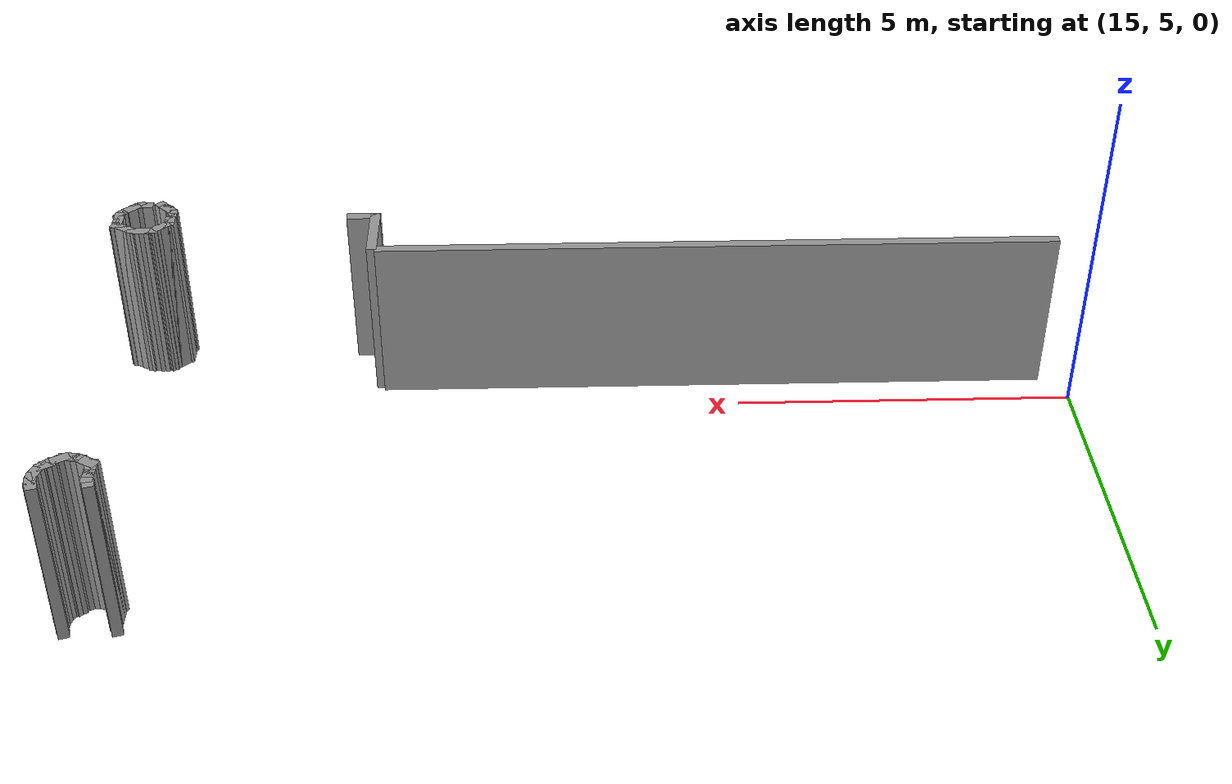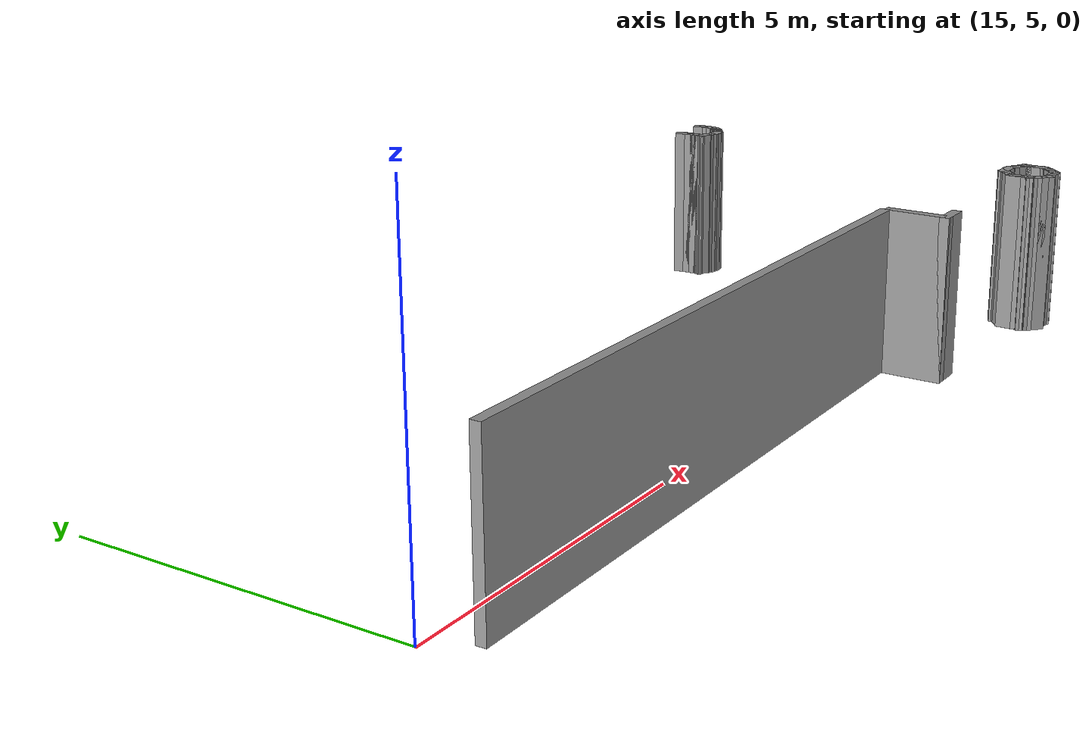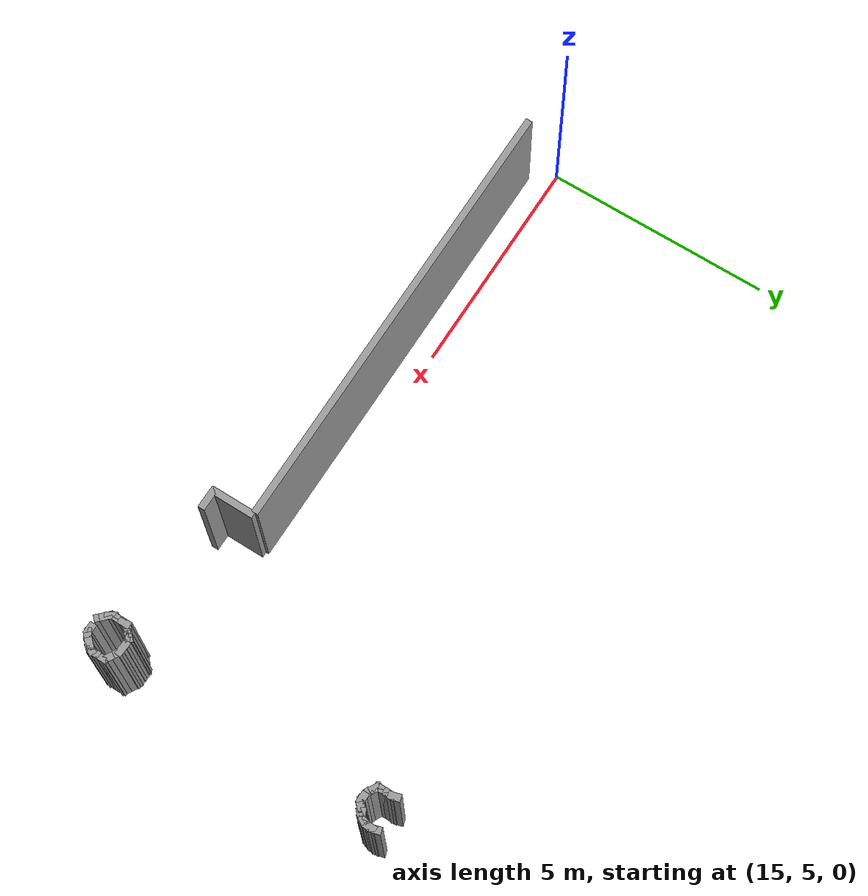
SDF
<sdf version="1.6">
 <model name="draft3">
  <pose>34.2026 -2.81154 0 0 -0 0</pose>
  <link name="Wall_310">
   <collision name="Wall_310_Collision">
    <geometry><box><size>10 0.15 2.5</size></box></geometry>
    <pose>0 0 1.25 0 -0 0</pose>
   </collision>
   <visual name="Wall_310_Visual">
    <pose>0 0 1.25 0 -0 0</pose>
    <geometry><box><size>10 0.15 2.5</size></box></geometry>
    <material>
     <script><uri>file://media/materials/scripts/gazebo.material</uri><name>Gazebo/Grey</name></script>
     <ambient>1 1 1 1</ambient>
    </material>
   </visual>
   <pose>-13.8388 7.2478 0 0 -0 0</pose>
  </link>
  <link name="Wall_391">
   <collision name="Wall_391_Collision">
    <geometry><box><size>0.25 0.15 2.5</size></box></geometry>
    <pose>0 0 1.25 0 -0 0</pose>
   </collision>
   <visual name="Wall_391_Visual">
    <pose>0 0 1.25 0 -0 0</pose>
    <geometry><box><size>0.25 0.15 2.5</size></box></geometry>
    <material>
     <script><uri>file://media/materials/scripts/gazebo.material</uri><name>Gazebo/Grey</name></script>
     <ambient>1 1 1 1</ambient>
    </material>
   </visual>
   <pose>-5.01032 12.4749 0 0 0 -1.309</pose>
  </link>
  <link name="Wall_392">
   <collision name="Wall_392_Collision">
    <geometry><box><size>0.25 0.15 2.5</size></box></geometry>
    <pose>0 0 1.25 0 -0 0</pose>
   </collision>
   <visual name="Wall_392_Visual">
    <pose>0 0 1.25 0 -0 0</pose>
    <geometry><box><size>0.25 0.15 2.5</size></box></geometry>
    <material>
     <script><uri>file://media/materials/scripts/gazebo.material</uri><name>Gazebo/Grey</name></script>
     <ambient>1 1 1 1</ambient>
    </material>
   </visual>
   <pose>-4.99737 12.3766 0 0 0 -1.5708</pose>
  </link>
  <link name="Wall_393">
   <collision name="Wall_393_Collision">
    <geometry><box><size>0.25 0.15 2.5</size></box></geometry>
    <pose>0 0 1.25 0 -0 0</pose>
   </collision>
   <visual name="Wall_393_Visual">
    <pose>0 0 1.25 0 -0 0</pose>
    <geometry><box><size>0.25 0.15 2.5</size></box></geometry>
    <material>
     <script><uri>file://media/materials/scripts/gazebo.material</uri><name>Gazebo/Grey</name></script>
     <ambient>1 1 1 1</ambient>
    </material>
   </visual>
   <pose>-5.01032 12.2783 0 0 0 -1.8326</pose>
  </link>
  <link name="Wall_394">
   <collision name="Wall_394_Collision">
    <geometry><box><size>0.25 0.15 2.5</size></box></geometry>
    <pose>0 0 1.25 0 -0 0</pose>
   </collision>
   <visual name="Wall_394_Visual">
    <pose>0 0 1.25 0 -0 0</pose>
    <geometry><box><size>0.25 0.15 2.5</size></box></geometry>
    <material>
     <script><uri>file://media/materials/scripts/gazebo.material</uri><name>Gazebo/Grey</name></script>
     <ambient>1 1 1 1</ambient>
    </material>
   </visual>
   <pose>-5.04826 12.1867 0 0 0 -2.0944</pose>
  </link>
  <link name="Wall_395">
   <collision name="Wall_395_Collision">
    <geometry><box><size>0.25 0.15 2.5</size></box></geometry>
    <pose>0 0 1.25 0 -0 0</pose>
   </collision>
   <visual name="Wall_395_Visual">
    <pose>0 0 1.25 0 -0 0</pose>
    <geometry><box><size>0.25 0.15 2.5</size></box></geometry>
    <material>
     <script><uri>file://media/materials/scripts/gazebo.material</uri><name>Gazebo/Grey</name></script>
     <ambient>1 1 1 1</ambient>
    </material>
   </visual>
   <pose>-5.10861 12.108 0 0 0 -2.35619</pose>
  </link>
  <link name="Wall_398">
   <collision name="Wall_398_Collision">
    <geometry><box><size>0.25 0.15 2.5</size></box></geometry>
    <pose>0 0 1.25 0 -0 0</pose>
   </collision>
   <visual name="Wall_398_Visual">
    <pose>0 0 1.25 0 -0 0</pose>
    <geometry><box><size>0.25 0.15 2.5</size></box></geometry>
    <material>
     <script><uri>file://media/materials/scripts/gazebo.material</uri><name>Gazebo/Grey</name></script>
     <ambient>1 1 1 1</ambient>
    </material>
   </visual>
   <pose>-5.11656 12.1184 0 0 0 -2.61799</pose>
  </link>
  <link name="Wall_399">
   <collision name="Wall_399_Collision">
    <geometry><box><size>0.25 0.15 2.5</size></box></geometry>
    <pose>0 0 1.25 0 -0 0</pose>
   </collision>
   <visual name="Wall_399_Visual">
    <pose>0 0 1.25 0 -0 0</pose>
    <geometry><box><size>0.25 0.15 2.5</size></box></geometry>
    <material>
     <script><uri>file://media/materials/scripts/gazebo.material</uri><name>Gazebo/Grey</name></script>
     <ambient>1 1 1 1</ambient>
    </material>
   </visual>
   <pose>-5.19521 12.058 0 0 0 -2.35619</pose>
  </link>
  <link name="Wall_400">
   <collision name="Wall_400_Collision">
    <geometry><box><size>0.25 0.15 2.5</size></box></geometry>
    <pose>0 0 1.25 0 -0 0</pose>
   </collision>
   <visual name="Wall_400_Visual">
    <pose>0 0 1.25 0 -0 0</pose>
    <geometry><box><size>0.25 0.15 2.5</size></box></geometry>
    <material>
     <script><uri>file://media/materials/scripts/gazebo.material</uri><name>Gazebo/Grey</name></script>
     <ambient>1 1 1 1</ambient>
    </material>
   </visual>
   <pose>-5.27387 11.9977 0 0 0 -2.61799</pose>
  </link>
  <link name="Wall_401">
   <collision name="Wall_401_Collision">
    <geometry><box><size>0.25 0.15 2.5</size></box></geometry>
    <pose>0 0 1.25 0 -0 0</pose>
   </collision>
   <visual name="Wall_401_Visual">
    <pose>0 0 1.25 0 -0 0</pose>
    <geometry><box><size>0.25 0.15 2.5</size></box></geometry>
    <material>
     <script><uri>file://media/materials/scripts/gazebo.material</uri><name>Gazebo/Grey</name></script>
     <ambient>1 1 1 1</ambient>
    </material>
   </visual>
   <pose>-5.36717 11.9727 0 0 -0 3.14159</pose>
  </link>
  <link name="Wall_402">
   <collision name="Wall_402_Collision">
    <geometry><box><size>0.25 0.15 2.5</size></box></geometry>
    <pose>0 0 1.25 0 -0 0</pose>
   </collision>
   <visual name="Wall_402_Visual">
    <pose>0 0 1.25 0 -0 0</pose>
    <geometry><box><size>0.25 0.15 2.5</size></box></geometry>
    <material>
     <script><uri>file://media/materials/scripts/gazebo.material</uri><name>Gazebo/Grey</name></script>
     <ambient>1 1 1 1</ambient>
    </material>
   </visual>
   <pose>-5.46547 11.9856 0 0 -0 2.87979</pose>
  </link>
  <link name="Wall_403">
   <collision name="Wall_403_Collision">
    <geometry><box><size>0.25 0.15 2.5</size></box></geometry>
    <pose>0 0 1.25 0 -0 0</pose>
   </collision>
   <visual name="Wall_403_Visual">
    <pose>0 0 1.25 0 -0 0</pose>
    <geometry><box><size>0.25 0.15 2.5</size></box></geometry>
    <material>
     <script><uri>file://media/materials/scripts/gazebo.material</uri><name>Gazebo/Grey</name></script>
     <ambient>1 1 1 1</ambient>
    </material>
   </visual>
   <pose>-5.55706 12.0236 0 0 -0 2.61799</pose>
  </link>
  <link name="Wall_404">
   <collision name="Wall_404_Collision">
    <geometry><box><size>0.25 0.15 2.5</size></box></geometry>
    <pose>0 0 1.25 0 -0 0</pose>
   </collision>
   <visual name="Wall_404_Visual">
    <pose>0 0 1.25 0 -0 0</pose>
    <geometry><box><size>0.25 0.15 2.5</size></box></geometry>
    <material>
     <script><uri>file://media/materials/scripts/gazebo.material</uri><name>Gazebo/Grey</name></script>
     <ambient>1 1 1 1</ambient>
    </material>
   </visual>
   <pose>-5.64367 12.0736 0 0 -0 2.61799</pose>
  </link>
  <link name="Wall_405">
   <collision name="Wall_405_Collision">
    <geometry><box><size>0.25 0.15 2.5</size></box></geometry>
    <pose>0 0 1.25 0 -0 0</pose>
   </collision>
   <visual name="Wall_405_Visual">
    <pose>0 0 1.25 0 -0 0</pose>
    <geometry><box><size>0.25 0.15 2.5</size></box></geometry>
    <material>
     <script><uri>file://media/materials/scripts/gazebo.material</uri><name>Gazebo/Grey</name></script>
     <ambient>1 1 1 1</ambient>
    </material>
   </visual>
   <pose>-5.68697 12.1486 0 0 -0 1.5708</pose>
  </link>
  <link name="Wall_406">
   <collision name="Wall_406_Collision">
    <geometry><box><size>0.25 0.15 2.5</size></box></geometry>
    <pose>0 0 1.25 0 -0 0</pose>
   </collision>
   <visual name="Wall_406_Visual">
    <pose>0 0 1.25 0 -0 0</pose>
    <geometry><box><size>0.25 0.15 2.5</size></box></geometry>
    <material>
     <script><uri>file://media/materials/scripts/gazebo.material</uri><name>Gazebo/Grey</name></script>
     <ambient>1 1 1 1</ambient>
    </material>
   </visual>
   <pose>-5.68697 12.2486 0 0 -0 1.5708</pose>
  </link>
  <link name="Wall_407">
   <collision name="Wall_407_Collision">
    <geometry><box><size>0.25 0.15 2.5</size></box></geometry>
    <pose>0 0 1.25 0 -0 0</pose>
   </collision>
   <visual name="Wall_407_Visual">
    <pose>0 0 1.25 0 -0 0</pose>
    <geometry><box><size>0.25 0.15 2.5</size></box></geometry>
    <material>
     <script><uri>file://media/materials/scripts/gazebo.material</uri><name>Gazebo/Grey</name></script>
     <ambient>1 1 1 1</ambient>
    </material>
   </visual>
   <pose>-5.68697 12.3486 0 0 -0 1.5708</pose>
  </link>
  <link name="Wall_408">
   <collision name="Wall_408_Collision">
    <geometry><box><size>0.25 0.15 2.5</size></box></geometry>
    <pose>0 0 1.25 0 -0 0</pose>
   </collision>
   <visual name="Wall_408_Visual">
    <pose>0 0 1.25 0 -0 0</pose>
    <geometry><box><size>0.25 0.15 2.5</size></box></geometry>
    <material>
     <script><uri>file://media/materials/scripts/gazebo.material</uri><name>Gazebo/Grey</name></script>
     <ambient>1 1 1 1</ambient>
    </material>
   </visual>
   <pose>-5.69991 12.4469 0 0 -0 1.8326</pose>
  </link>
  <link name="Wall_443">
   <collision name="Wall_443_Collision">
    <geometry><box><size>0.25 0.15 2.5</size></box></geometry>
    <pose>0 0 1.25 0 -0 0</pose>
   </collision>
   <visual name="Wall_443_Visual">
    <pose>0 0 1.25 0 -0 0</pose>
    <geometry><box><size>0.25 0.15 2.5</size></box></geometry>
    <material>
     <script><uri>file://media/materials/scripts/gazebo.material</uri><name>Gazebo/Grey</name></script>
     <ambient>1 1 1 1</ambient>
    </material>
   </visual>
   <pose>-5.75024 6.40403 0 0 0 -1.5708</pose>
  </link>
  <link name="Wall_444">
   <collision name="Wall_444_Collision">
    <geometry><box><size>0.25 0.15 2.5</size></box></geometry>
    <pose>0 0 1.25 0 -0 0</pose>
   </collision>
   <visual name="Wall_444_Visual">
    <pose>0 0 1.25 0 -0 0</pose>
    <geometry><box><size>0.25 0.15 2.5</size></box></geometry>
    <material>
     <script><uri>file://media/materials/scripts/gazebo.material</uri><name>Gazebo/Grey</name></script>
     <ambient>1 1 1 1</ambient>
    </material>
   </visual>
   <pose>-5.75024 6.30403 0 0 0 -1.5708</pose>
  </link>
  <link name="Wall_445">
   <collision name="Wall_445_Collision">
    <geometry><box><size>0.25 0.15 2.5</size></box></geometry>
    <pose>0 0 1.25 0 -0 0</pose>
   </collision>
   <visual name="Wall_445_Visual">
    <pose>0 0 1.25 0 -0 0</pose>
    <geometry><box><size>0.25 0.15 2.5</size></box></geometry>
    <material>
     <script><uri>file://media/materials/scripts/gazebo.material</uri><name>Gazebo/Grey</name></script>
     <ambient>1 1 1 1</ambient>
    </material>
   </visual>
   <pose>-5.75024 6.20403 0 0 0 -1.5708</pose>
  </link>
  <link name="Wall_446">
   <collision name="Wall_446_Collision">
    <geometry><box><size>0.25 0.15 2.5</size></box></geometry>
    <pose>0 0 1.25 0 -0 0</pose>
   </collision>
   <visual name="Wall_446_Visual">
    <pose>0 0 1.25 0 -0 0</pose>
    <geometry><box><size>0.25 0.15 2.5</size></box></geometry>
    <material>
     <script><uri>file://media/materials/scripts/gazebo.material</uri><name>Gazebo/Grey</name></script>
     <ambient>1 1 1 1</ambient>
    </material>
   </visual>
   <pose>-5.72524 6.11073 0 0 0 -1.0472</pose>
  </link>
  <link name="Wall_447">
   <collision name="Wall_447_Collision">
    <geometry><box><size>0.25 0.15 2.5</size></box></geometry>
    <pose>0 0 1.25 0 -0 0</pose>
   </collision>
   <visual name="Wall_447_Visual">
    <pose>0 0 1.25 0 -0 0</pose>
    <geometry><box><size>0.25 0.15 2.5</size></box></geometry>
    <material>
     <script><uri>file://media/materials/scripts/gazebo.material</uri><name>Gazebo/Grey</name></script>
     <ambient>1 1 1 1</ambient>
    </material>
   </visual>
   <pose>-5.66488 6.03207 0 0 0 -0.785398</pose>
  </link>
  <link name="Wall_448">
   <collision name="Wall_448_Collision">
    <geometry><box><size>0.25 0.15 2.5</size></box></geometry>
    <pose>0 0 1.25 0 -0 0</pose>
   </collision>
   <visual name="Wall_448_Visual">
    <pose>0 0 1.25 0 -0 0</pose>
    <geometry><box><size>0.25 0.15 2.5</size></box></geometry>
    <material>
     <script><uri>file://media/materials/scripts/gazebo.material</uri><name>Gazebo/Grey</name></script>
     <ambient>1 1 1 1</ambient>
    </material>
   </visual>
   <pose>-5.59417 5.96136 0 0 0 -0.785398</pose>
  </link>
  <link name="Wall_451">
   <collision name="Wall_451_Collision">
    <geometry><box><size>0.25 0.15 2.5</size></box></geometry>
    <pose>0 0 1.25 0 -0 0</pose>
   </collision>
   <visual name="Wall_451_Visual">
    <pose>0 0 1.25 0 -0 0</pose>
    <geometry><box><size>0.25 0.15 2.5</size></box></geometry>
    <material>
     <script><uri>file://media/materials/scripts/gazebo.material</uri><name>Gazebo/Grey</name></script>
     <ambient>1 1 1 1</ambient>
    </material>
   </visual>
   <pose>-5.30882 5.926 0 0 -0 0</pose>
  </link>
  <link name="Wall_452">
   <collision name="Wall_452_Collision">
    <geometry><box><size>0.25 0.15 2.5</size></box></geometry>
    <pose>0 0 1.25 0 -0 0</pose>
   </collision>
   <visual name="Wall_452_Visual">
    <pose>0 0 1.25 0 -0 0</pose>
    <geometry><box><size>0.25 0.15 2.5</size></box></geometry>
    <material>
     <script><uri>file://media/materials/scripts/gazebo.material</uri><name>Gazebo/Grey</name></script>
     <ambient>1 1 1 1</ambient>
    </material>
   </visual>
   <pose>-5.21552 5.95101 0 0 -0 0.523599</pose>
  </link>
  <link name="Wall_453">
   <collision name="Wall_453_Collision">
    <geometry><box><size>0.25 0.15 2.5</size></box></geometry>
    <pose>0 0 1.25 0 -0 0</pose>
   </collision>
   <visual name="Wall_453_Visual">
    <pose>0 0 1.25 0 -0 0</pose>
    <geometry><box><size>0.25 0.15 2.5</size></box></geometry>
    <material>
     <script><uri>file://media/materials/scripts/gazebo.material</uri><name>Gazebo/Grey</name></script>
     <ambient>1 1 1 1</ambient>
    </material>
   </visual>
   <pose>-5.13686 6.01136 0 0 -0 0.785398</pose>
  </link>
  <link name="Wall_454">
   <collision name="Wall_454_Collision">
    <geometry><box><size>0.25 0.15 2.5</size></box></geometry>
    <pose>0 0 1.25 0 -0 0</pose>
   </collision>
   <visual name="Wall_454_Visual">
    <pose>0 0 1.25 0 -0 0</pose>
    <geometry><box><size>0.25 0.15 2.5</size></box></geometry>
    <material>
     <script><uri>file://media/materials/scripts/gazebo.material</uri><name>Gazebo/Grey</name></script>
     <ambient>1 1 1 1</ambient>
    </material>
   </visual>
   <pose>-5.06615 6.08207 0 0 -0 0.785398</pose>
  </link>
  <link name="Wall_455">
   <collision name="Wall_455_Collision">
    <geometry><box><size>0.25 0.15 2.5</size></box></geometry>
    <pose>0 0 1.25 0 -0 0</pose>
   </collision>
   <visual name="Wall_455_Visual">
    <pose>0 0 1.25 0 -0 0</pose>
    <geometry><box><size>0.25 0.15 2.5</size></box></geometry>
    <material>
     <script><uri>file://media/materials/scripts/gazebo.material</uri><name>Gazebo/Grey</name></script>
     <ambient>1 1 1 1</ambient>
    </material>
   </visual>
   <pose>-5.00579 6.16073 0 0 -0 1.0472</pose>
  </link>
  <link name="Wall_456">
   <collision name="Wall_456_Collision">
    <geometry><box><size>0.25 0.15 2.5</size></box></geometry>
    <pose>0 0 1.25 0 -0 0</pose>
   </collision>
   <visual name="Wall_456_Visual">
    <pose>0 0 1.25 0 -0 0</pose>
    <geometry><box><size>0.25 0.15 2.5</size></box></geometry>
    <material>
     <script><uri>file://media/materials/scripts/gazebo.material</uri><name>Gazebo/Grey</name></script>
     <ambient>1 1 1 1</ambient>
    </material>
   </visual>
   <pose>-4.98079 6.25403 0 0 -0 1.5708</pose>
  </link>
  <link name="Wall_457">
   <collision name="Wall_457_Collision">
    <geometry><box><size>0.25 0.15 2.5</size></box></geometry>
    <pose>0 0 1.25 0 -0 0</pose>
   </collision>
   <visual name="Wall_457_Visual">
    <pose>0 0 1.25 0 -0 0</pose>
    <geometry><box><size>0.25 0.15 2.5</size></box></geometry>
    <material>
     <script><uri>file://media/materials/scripts/gazebo.material</uri><name>Gazebo/Grey</name></script>
     <ambient>1 1 1 1</ambient>
    </material>
   </visual>
   <pose>-4.98079 6.35403 0 0 -0 1.5708</pose>
  </link>
  <link name="Wall_458">
   <collision name="Wall_458_Collision">
    <geometry><box><size>0.25 0.15 2.5</size></box></geometry>
    <pose>0 0 1.25 0 -0 0</pose>
   </collision>
   <visual name="Wall_458_Visual">
    <pose>0 0 1.25 0 -0 0</pose>
    <geometry><box><size>0.25 0.15 2.5</size></box></geometry>
    <material>
     <script><uri>file://media/materials/scripts/gazebo.material</uri><name>Gazebo/Grey</name></script>
     <ambient>1 1 1 1</ambient>
    </material>
   </visual>
   <pose>-4.98079 6.45403 0 0 -0 1.5708</pose>
  </link>
  <link name="Wall_459">
   <collision name="Wall_459_Collision">
    <geometry><box><size>0.25 0.15 2.5</size></box></geometry>
    <pose>0 0 1.25 0 -0 0</pose>
   </collision>
   <visual name="Wall_459_Visual">
    <pose>0 0 1.25 0 -0 0</pose>
    <geometry><box><size>0.25 0.15 2.5</size></box></geometry>
    <material>
     <script><uri>file://media/materials/scripts/gazebo.material</uri><name>Gazebo/Grey</name></script>
     <ambient>1 1 1 1</ambient>
    </material>
   </visual>
   <pose>-5.0241 6.52903 0 0 -0 2.61799</pose>
  </link>
  <link name="Wall_460">
   <collision name="Wall_460_Collision">
    <geometry><box><size>0.25 0.15 2.5</size></box></geometry>
    <pose>0 0 1.25 0 -0 0</pose>
   </collision>
   <visual name="Wall_460_Visual">
    <pose>0 0 1.25 0 -0 0</pose>
    <geometry><box><size>0.25 0.15 2.5</size></box></geometry>
    <material>
     <script><uri>file://media/materials/scripts/gazebo.material</uri><name>Gazebo/Grey</name></script>
     <ambient>1 1 1 1</ambient>
    </material>
   </visual>
   <pose>-5.1107 6.57903 0 0 -0 2.61799</pose>
  </link>
  <link name="Wall_461">
   <collision name="Wall_461_Collision">
    <geometry><box><size>0.25 0.15 2.5</size></box></geometry>
    <pose>0 0 1.25 0 -0 0</pose>
   </collision>
   <visual name="Wall_461_Visual">
    <pose>0 0 1.25 0 -0 0</pose>
    <geometry><box><size>0.25 0.15 2.5</size></box></geometry>
    <material>
     <script><uri>file://media/materials/scripts/gazebo.material</uri><name>Gazebo/Grey</name></script>
     <ambient>1 1 1 1</ambient>
    </material>
   </visual>
   <pose>-5.1973 6.62903 0 0 -0 2.61799</pose>
  </link>
  <link name="Wall_462">
   <collision name="Wall_462_Collision">
    <geometry><box><size>0.329388 0.15 2.5</size></box></geometry>
    <pose>0 0 1.25 0 -0 0</pose>
   </collision>
   <visual name="Wall_462_Visual">
    <pose>0 0 1.25 0 -0 0</pose>
    <geometry><box><size>0.329388 0.15 2.5</size></box></geometry>
    <material>
     <script><uri>file://media/materials/scripts/gazebo.material</uri><name>Gazebo/Grey</name></script>
     <ambient>1 1 1 1</ambient>
    </material>
   </visual>
   <pose>-5.33011 6.65983 0 0 -0 3.07688</pose>
  </link>
  <link name="Wall_463">
   <collision name="Wall_463_Collision">
    <geometry><box><size>0.269757 0.15 2.5</size></box></geometry>
    <pose>0 0 1.25 0 -0 0</pose>
   </collision>
   <visual name="Wall_463_Visual">
    <pose>0 0 1.25 0 -0 0</pose>
    <geometry><box><size>0.269757 0.15 2.5</size></box></geometry>
    <material>
     <script><uri>file://media/materials/scripts/gazebo.material</uri><name>Gazebo/Grey</name></script>
     <ambient>1 1 1 1</ambient>
    </material>
   </visual>
   <pose>-5.47913 6.65902 0 0 0 -3.03093</pose>
  </link>
  <link name="Wall_464">
   <collision name="Wall_464_Collision">
    <geometry><box><size>0.243515 0.15 2.5</size></box></geometry>
    <pose>0 0 1.25 0 -0 0</pose>
   </collision>
   <visual name="Wall_464_Visual">
    <pose>0 0 1.25 0 -0 0</pose>
    <geometry><box><size>0.243515 0.15 2.5</size></box></geometry>
    <material>
     <script><uri>file://media/materials/scripts/gazebo.material</uri><name>Gazebo/Grey</name></script>
     <ambient>1 1 1 1</ambient>
    </material>
   </visual>
   <pose>-5.5717 6.61934 0 0 0 -2.35619</pose>
  </link>
  <link name="Wall_465">
   <collision name="Wall_465_Collision">
    <geometry><box><size>0.271928 0.15 2.5</size></box></geometry>
    <pose>0 0 1.25 0 -0 0</pose>
   </collision>
   <visual name="Wall_465_Visual">
    <pose>0 0 1.25 0 -0 0</pose>
    <geometry><box><size>0.271928 0.15 2.5</size></box></geometry>
    <material>
     <script><uri>file://media/materials/scripts/gazebo.material</uri><name>Gazebo/Grey</name></script>
     <ambient>1 1 1 1</ambient>
    </material>
   </visual>
   <pose>-5.65105 6.5466 0 0 0 -2.43297</pose>
  </link>
  <link name="Wall_466">
   <collision name="Wall_466_Collision">
    <geometry><box><size>0.271928 0.15 2.5</size></box></geometry>
    <pose>0 0 1.25 0 -0 0</pose>
   </collision>
   <visual name="Wall_466_Visual">
    <pose>0 0 1.25 0 -0 0</pose>
    <geometry><box><size>0.271928 0.15 2.5</size></box></geometry>
    <material>
     <script><uri>file://media/materials/scripts/gazebo.material</uri><name>Gazebo/Grey</name></script>
     <ambient>1 1 1 1</ambient>
    </material>
   </visual>
   <pose>-5.65105 6.5466 0 0 -0 0.708626</pose>
  </link>
  <link name="Wall_48">
   <collision name="Wall_48_Collision">
    <geometry><box><size>1 0.15 2.5</size></box></geometry>
    <pose>0 0 1.25 0 -0 0</pose>
   </collision>
   <visual name="Wall_48_Visual">
    <pose>0 0 1.25 0 -0 0</pose>
    <geometry><box><size>1 0.15 2.5</size></box></geometry>
    <material>
     <script><uri>file://media/materials/scripts/gazebo.material</uri><name>Gazebo/Grey</name></script>
     <ambient>1 1 1 1</ambient>
    </material>
   </visual>
   <pose>-8.7933 6.75891 0 0 0 -1.5708</pose>
  </link>
  <link name="Wall_49">
   <collision name="Wall_49_Collision">
    <geometry><box><size>0.5 0.15 2.5</size></box></geometry>
    <pose>0 0 1.25 0 -0 0</pose>
   </collision>
   <visual name="Wall_49_Visual">
    <pose>0 0 1.25 0 -0 0</pose>
    <geometry><box><size>0.5 0.15 2.5</size></box></geometry>
    <material>
     <script><uri>file://media/materials/scripts/gazebo.material</uri><name>Gazebo/Grey</name></script>
     <ambient>1 1 1 1</ambient>
    </material>
   </visual>
   <pose>-8.6183 6.33391 0 0 -0 0</pose>
  </link>
  <static>1</static>
 </model>
</sdf>
